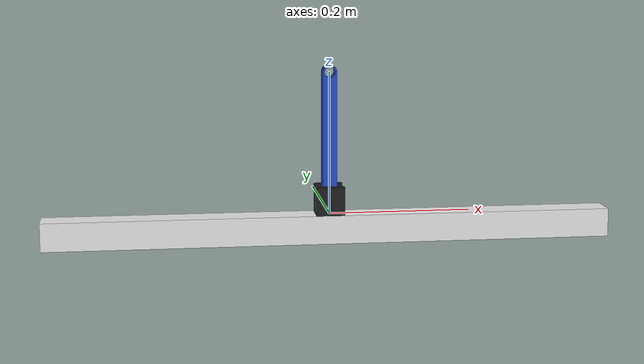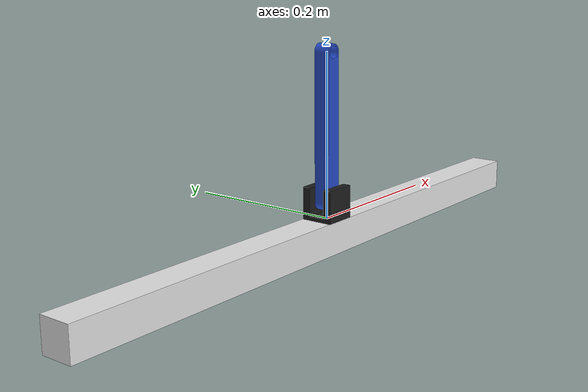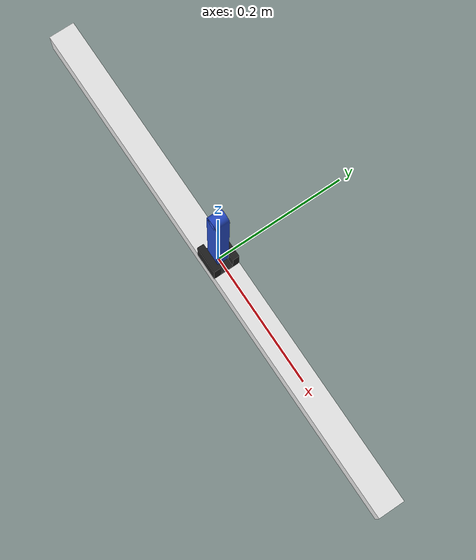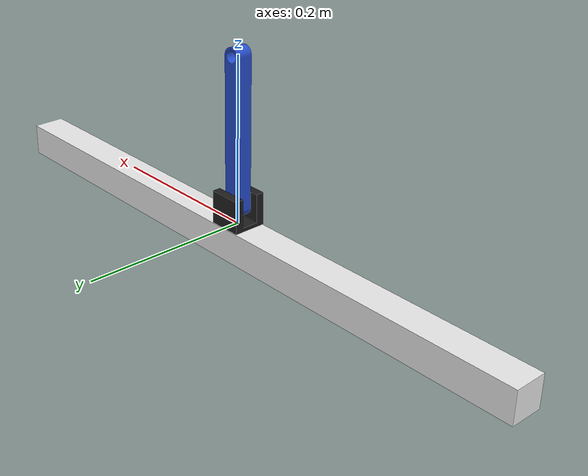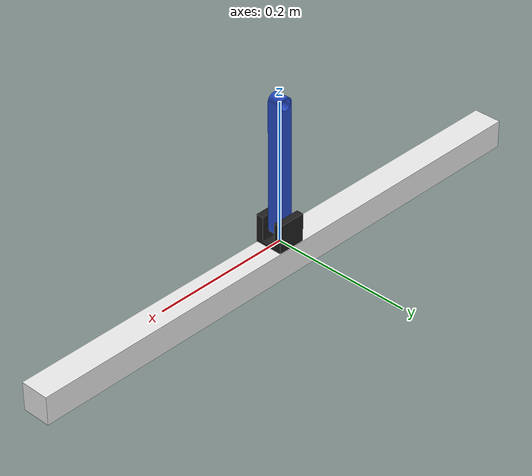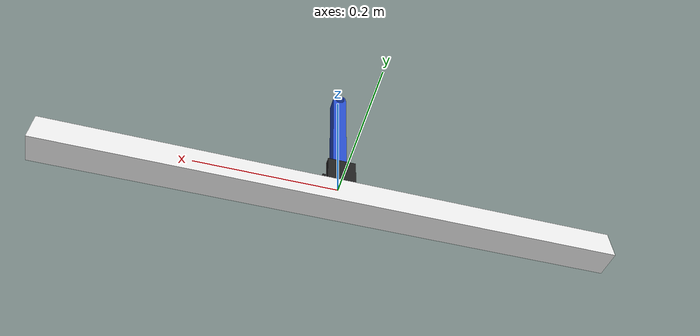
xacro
<?xml version="1.0"?>
<robot name="cartpole" xmlns:xacro="http://ros.rog/wiki/xacro">
  <xacro:include filename="ros_foxy_gazebo_gym/urdf/cartpole/cartpole.description.xacro"/>
  <xacro:include filename="ros_foxy_gazebo_gym/urdf/cartpole/cartpole.plugin.xacro"/>
  <xacro:cartpole_description/>
  <xacro:cartpole_plugins/>
  <link name="world"/>

  <joint name="world_fixed" type="fixed">
    <origin xyz="0 0 0" rpy="0 0 0"/>
    <parent link="world"/>
    <child link="bar"/>
  </joint>
</robot>

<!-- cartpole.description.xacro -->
<robot name="cartpole" xmlns:xacro="http://www.ros.org/wiki/xacro">
  <xacro:macro name="cartpole_description">
    <xacro:include filename="ros_foxy_gazebo_gym/urdf/cartpole/cartpole.link.xacro"/>
    <xacro:include filename="ros_foxy_gazebo_gym/urdf/cartpole/cartpole.gazebo.xacro"/>

    <link name="bar">
      <visual>
        <xacro:bar_visual/>
      </visual>
      <inertial>
        <xacro:bar_inertial/>
      </inertial>
      <collision>
        <xacro:bar_collision/>
      </collision>
    </link>

    <joint name="prismatic_joint" type="prismatic">
      <origin xyz="0 0 0" rpy="${pi/2.0} 0 0"/>
      <parent link="bar"/>
      <child link="motor"/>
      <axis xyz="1 0 0"/>
      <limit effort="20.0" lower="-0.38" upper="0.38" velocity="20.0"/>
    </joint>

    <link name="motor">
      <visual>
        <xacro:motor_visual/>
      </visual>
      <inertial>
        <xacro:motor_inertial/>
      </inertial>
      <collision>
        <xacro:motor_collision/>
      </collision>
    </link>

    <joint name="revolute_joint" type="revolute">
      <origin xyz="0 0.02 0" rpy="0 0 0"/>
      <parent link="motor"/>
      <child link="link"/>
      <axis xyz="0 0 1"/>
      <limit velocity="1.0" effort="1.0" lower="-1.57" upper="1.57"/>
    </joint>

    <link name="link">
      <visual>
        <xacro:link_visual/>
      </visual>
      <inertial>
        <xacro:link_inertial/>
      </inertial>
      <collision>
        <xacro:link_collision/>
      </collision>
    </link>

    <xacro:bar_reference/>
    <xacro:motor_reference/>
    <xacro:link_reference/>
  </xacro:macro>
</robot>

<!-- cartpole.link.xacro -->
<robot name="cartpole" xmlns:xacro="http://www.ros.org/wiki/xacro">
  <xacro:macro name="bar_visual">
    <origin xyz="0 0 0" rpy="0 0 0"/>
    <geometry>
        <mesh filename="file://ros_foxy_gazebo_gym/meshes/cartpole/bar.STL" scale="0.001 0.001 0.001"/>
    </geometry>
  </xacro:macro>

  <xacro:macro name="motor_visual">
    <origin xyz="0 0 0" rpy="0 0 0"/>
    <geometry>
        <mesh filename="file://ros_foxy_gazebo_gym/meshes/cartpole/motor.STL" scale="0.001 0.001 0.001"/>
    </geometry>
  </xacro:macro>

  <xacro:macro name="link_visual">
    <origin xyz="0 0 0" rpy="0 0 0"/>
    <geometry>
        <mesh filename="file://ros_foxy_gazebo_gym/meshes/cartpole/link.STL" scale="0.001 0.001 0.001"/>
    </geometry>
  </xacro:macro>

  <xacro:macro name="bar_inertial">
    <origin rpy="0 0 0" xyz="0.0 0.000859 -0.02"/>
    <mass value="1.28"/>
    <inertia ixx="0.000854" ixy="0.0" ixz="0.0" iyy="0.068949" iyz="-0.000022" izz="0.068438"/>
  </xacro:macro>

  <xacro:macro name="motor_inertial">
    <origin rpy="0 0 0" xyz="0.0 0.018229 0.0"/>
    <mass value="0.03953"/>
    <inertia ixx="0.000026" ixy="0.0" ixz="0.0" iyy="0.000013" iyz="0.0" izz="0.000023"/>
  </xacro:macro>

  <xacro:macro name="link_inertial">
    <origin rpy="0 0 0" xyz="0.0 0.09 0.0"/>
    <mass value="0.07121"/>
    <inertia ixx="0.000772" ixy="0.0" ixz="0.0" iyy="0.000005" iyz="0.0" izz="0.000772"/>
  </xacro:macro>

  <xacro:macro name="bar_collision">
    <origin xyz="0 0 0" rpy="0 0 0"/>
    <geometry>
        <mesh filename="file://ros_foxy_gazebo_gym/meshes/cartpole/bar.STL" scale="0.001 0.001 0.001"/>
    </geometry>
  </xacro:macro>

  <xacro:macro name="motor_collision">
    <origin xyz="0 0 0" rpy="0 0 0"/>
    <geometry>
        <mesh filename="file://ros_foxy_gazebo_gym/meshes/cartpole/motor.STL" scale="0.001 0.001 0.001"/>
    </geometry>
  </xacro:macro>

  <xacro:macro name="link_collision">
    <origin xyz="0 0 0" rpy="0 0 0"/>
    <geometry>
        <mesh filename="file://ros_foxy_gazebo_gym/meshes/cartpole/link.STL" scale="0.001 0.001 0.001"/>
    </geometry>
  </xacro:macro>
</robot>
